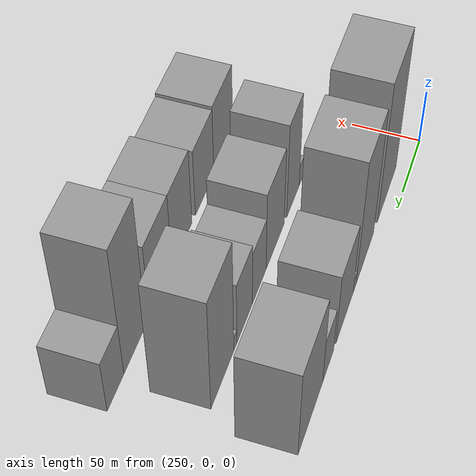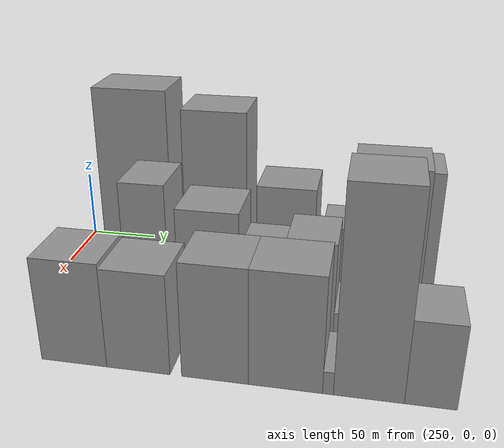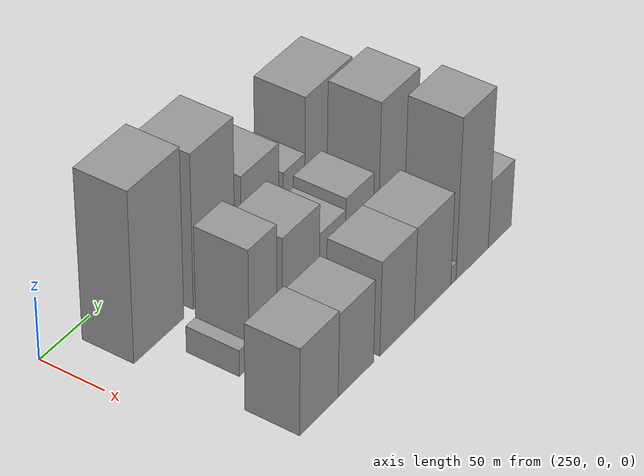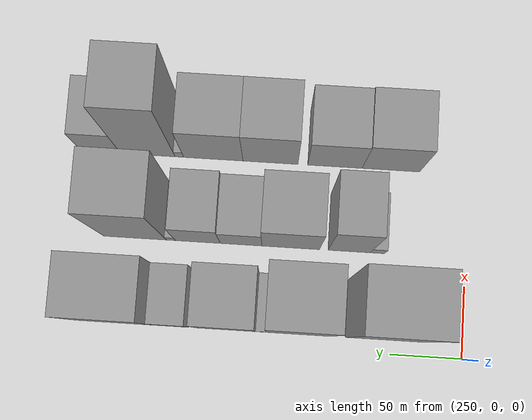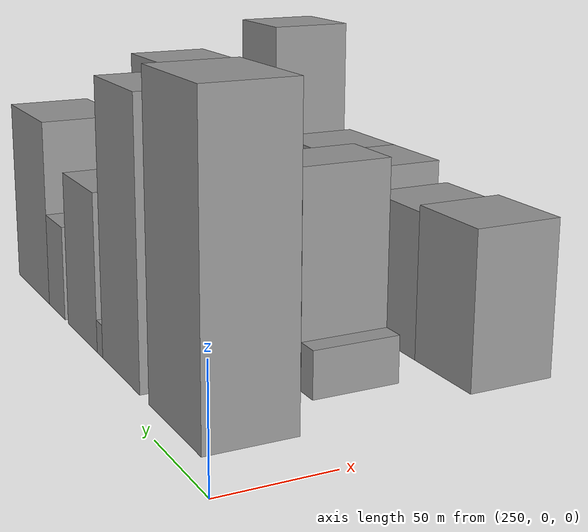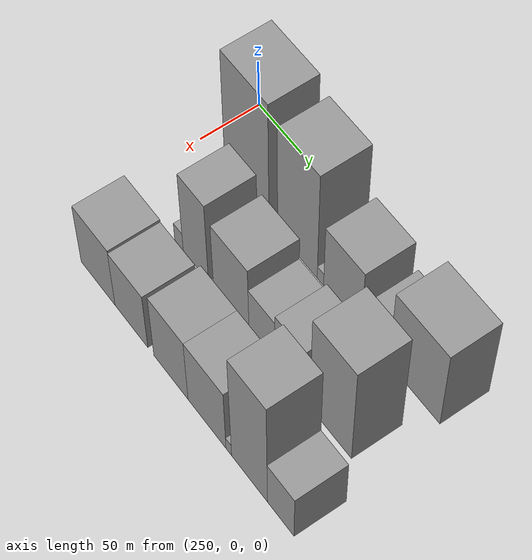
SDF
<sdf version="1.6">
 <world name="default">
  <model name="building_182">
   <static>1</static>
   <pose>280.0000 55.6610 0 0.000000 0.000000 0.000000</pose>
   <link name="link">
    <pose>0 0 67.50 0 0 0</pose>
    <collision name="collision"><geometry><box><size>40.0000 51.8874 135.0000</size></box></geometry></collision>
    <visual name="visual">
     <cast_shadows>0</cast_shadows>
     <geometry><box><size>40.0000 51.8874 135.0000</size></box></geometry>
     <material>
      <script>
       <uri>model://grey_wall/materials/scripts</uri>
       <uri>model://grey_wall/materials/textures</uri>
       <name>vrc/grey_wall</name>
      </script>
     </material>
    </visual>
   </link>
  </model>
  <model name="building_183">
   <static>1</static>
   <pose>280.0000 114.0816 0 0.000000 0.000000 0.000000</pose>
   <link name="link">
    <pose>0 0 61.50 0 0 0</pose>
    <collision name="collision"><geometry><box><size>40.0000 44.9537 123.0000</size></box></geometry></collision>
    <visual name="visual">
     <cast_shadows>0</cast_shadows>
     <geometry><box><size>40.0000 44.9537 123.0000</size></box></geometry>
     <material>
      <script>
       <uri>model://grey_wall/materials/scripts</uri>
       <uri>model://grey_wall/materials/textures</uri>
       <name>vrc/grey_wall</name>
      </script>
     </material>
    </visual>
   </link>
  </model>
  <model name="building_184">
   <static>1</static>
   <pose>280.0000 140.1601 0 0.000000 0.000000 0.000000</pose>
   <link name="link">
    <pose>0 0 7.50 0 0 0</pose>
    <collision name="collision"><geometry><box><size>40.0000 7.2034 15.0000</size></box></geometry></collision>
    <visual name="visual">
     <cast_shadows>0</cast_shadows>
     <geometry><box><size>40.0000 7.2034 15.0000</size></box></geometry>
     <material>
      <script>
       <uri>model://grey_wall/materials/scripts</uri>
       <uri>model://grey_wall/materials/textures</uri>
       <name>vrc/grey_wall</name>
      </script>
     </material>
    </visual>
   </link>
  </model>
  <model name="building_185">
   <static>1</static>
   <pose>280.0000 164.4192 0 0.000000 0.000000 0.000000</pose>
   <link name="link">
    <pose>0 0 36.00 0 0 0</pose>
    <collision name="collision"><geometry><box><size>40.0000 41.3148 72.0000</size></box></geometry></collision>
    <visual name="visual">
     <cast_shadows>0</cast_shadows>
     <geometry><box><size>40.0000 41.3148 72.0000</size></box></geometry>
     <material>
      <script>
       <uri>model://grey_wall/materials/scripts</uri>
       <uri>model://grey_wall/materials/textures</uri>
       <name>vrc/grey_wall</name>
      </script>
     </material>
    </visual>
   </link>
  </model>
  <model name="building_186">
   <static>1</static>
   <pose>280.0000 202.5063 0 0.000000 0.000000 0.000000</pose>
   <link name="link">
    <pose>0 0 22.50 0 0 0</pose>
    <collision name="collision"><geometry><box><size>40.0000 24.8593 45.0000</size></box></geometry></collision>
    <visual name="visual">
     <cast_shadows>0</cast_shadows>
     <geometry><box><size>40.0000 24.8593 45.0000</size></box></geometry>
     <material>
      <script>
       <uri>model://grey_wall/materials/scripts</uri>
       <uri>model://grey_wall/materials/textures</uri>
       <name>vrc/grey_wall</name>
      </script>
     </material>
    </visual>
   </link>
  </model>
  <model name="building_187">
   <static>1</static>
   <pose>280.0000 241.6313 0 0.000000 0.000000 0.000000</pose>
   <link name="link">
    <pose>0 0 45.00 0 0 0</pose>
    <collision name="collision"><geometry><box><size>40.0000 53.3908 90.0000</size></box></geometry></collision>
    <visual name="visual">
     <cast_shadows>0</cast_shadows>
     <geometry><box><size>40.0000 53.3908 90.0000</size></box></geometry>
     <material>
      <script>
       <uri>model://grey_wall/materials/scripts</uri>
       <uri>model://grey_wall/materials/textures</uri>
       <name>vrc/grey_wall</name>
      </script>
     </material>
    </visual>
   </link>
  </model>
  <model name="building_237">
   <static>1</static>
   <pose>340.0000 62.0020 0 0.000000 0.000000 0.000000</pose>
   <link name="link">
    <pose>0 0 10.50 0 0 0</pose>
    <collision name="collision"><geometry><box><size>40.0000 10.1527 21.0000</size></box></geometry></collision>
    <visual name="visual">
     <cast_shadows>0</cast_shadows>
     <geometry><box><size>40.0000 10.1527 21.0000</size></box></geometry>
     <material>
      <script>
       <uri>model://grey_wall/materials/scripts</uri>
       <uri>model://grey_wall/materials/textures</uri>
       <name>vrc/grey_wall</name>
      </script>
     </material>
    </visual>
   </link>
  </model>
  <model name="building_238">
   <static>1</static>
   <pose>340.0000 81.9165 0 0.000000 0.000000 0.000000</pose>
   <link name="link">
    <pose>0 0 46.50 0 0 0</pose>
    <collision name="collision"><geometry><box><size>40.0000 29.6761 93.0000</size></box></geometry></collision>
    <visual name="visual">
     <cast_shadows>0</cast_shadows>
     <geometry><box><size>40.0000 29.6761 93.0000</size></box></geometry>
     <material>
      <script>
       <uri>model://grey_wall/materials/scripts</uri>
       <uri>model://grey_wall/materials/textures</uri>
       <name>vrc/grey_wall</name>
      </script>
     </material>
    </visual>
   </link>
  </model>
  <model name="building_239">
   <static>1</static>
   <pose>340.0000 123.0331 0 0.000000 0.000000 0.000000</pose>
   <link name="link">
    <pose>0 0 39.00 0 0 0</pose>
    <collision name="collision"><geometry><box><size>40.0000 40.5572 78.0000</size></box></geometry></collision>
    <visual name="visual">
     <cast_shadows>0</cast_shadows>
     <geometry><box><size>40.0000 40.5572 78.0000</size></box></geometry>
     <material>
      <script>
       <uri>model://grey_wall/materials/scripts</uri>
       <uri>model://grey_wall/materials/textures</uri>
       <name>vrc/grey_wall</name>
      </script>
     </material>
    </visual>
   </link>
  </model>
  <model name="building_240">
   <static>1</static>
   <pose>340.0000 157.9282 0 0.000000 0.000000 0.000000</pose>
   <link name="link">
    <pose>0 0 27.00 0 0 0</pose>
    <collision name="collision"><geometry><box><size>40.0000 29.2330 54.0000</size></box></geometry></collision>
    <visual name="visual">
     <cast_shadows>0</cast_shadows>
     <geometry><box><size>40.0000 29.2330 54.0000</size></box></geometry>
     <material>
      <script>
       <uri>model://grey_wall/materials/scripts</uri>
       <uri>model://grey_wall/materials/textures</uri>
       <name>vrc/grey_wall</name>
      </script>
     </material>
    </visual>
   </link>
  </model>
  <model name="building_241">
   <static>1</static>
   <pose>340.0000 188.3856 0 0.000000 0.000000 0.000000</pose>
   <link name="link">
    <pose>0 0 31.50 0 0 0</pose>
    <collision name="collision"><geometry><box><size>40.0000 31.6819 63.0000</size></box></geometry></collision>
    <visual name="visual">
     <cast_shadows>0</cast_shadows>
     <geometry><box><size>40.0000 31.6819 63.0000</size></box></geometry>
     <material>
      <script>
       <uri>model://grey_wall/materials/scripts</uri>
       <uri>model://grey_wall/materials/textures</uri>
       <name>vrc/grey_wall</name>
      </script>
     </material>
    </visual>
   </link>
  </model>
  <model name="building_242">
   <static>1</static>
   <pose>340.0000 207.4656 0 0.000000 0.000000 0.000000</pose>
   <link name="link">
    <pose>0 0 7.50 0 0 0</pose>
    <collision name="collision"><geometry><box><size>40.0000 6.4781 15.0000</size></box></geometry></collision>
    <visual name="visual">
     <cast_shadows>0</cast_shadows>
     <geometry><box><size>40.0000 6.4781 15.0000</size></box></geometry>
     <material>
      <script>
       <uri>model://grey_wall/materials/scripts</uri>
       <uri>model://grey_wall/materials/textures</uri>
       <name>vrc/grey_wall</name>
      </script>
     </material>
    </visual>
   </link>
  </model>
  <model name="building_243">
   <static>1</static>
   <pose>340.0000 232.7843 0 0.000000 0.000000 0.000000</pose>
   <link name="link">
    <pose>0 0 57.00 0 0 0</pose>
    <collision name="collision"><geometry><box><size>40.0000 44.1592 114.0000</size></box></geometry></collision>
    <visual name="visual">
     <cast_shadows>0</cast_shadows>
     <geometry><box><size>40.0000 44.1592 114.0000</size></box></geometry>
     <material>
      <script>
       <uri>model://grey_wall/materials/scripts</uri>
       <uri>model://grey_wall/materials/textures</uri>
       <name>vrc/grey_wall</name>
      </script>
     </material>
    </visual>
   </link>
  </model>
  <model name="building_290">
   <static>1</static>
   <pose>400.0000 55.1021 0 0.000000 0.000000 0.000000</pose>
   <link name="link">
    <pose>0 0 34.50 0 0 0</pose>
    <collision name="collision"><geometry><box><size>40.0000 41.1230 69.0000</size></box></geometry></collision>
    <visual name="visual">
     <cast_shadows>0</cast_shadows>
     <geometry><box><size>40.0000 41.1230 69.0000</size></box></geometry>
     <material>
      <script>
       <uri>model://grey_wall/materials/scripts</uri>
       <uri>model://grey_wall/materials/textures</uri>
       <name>vrc/grey_wall</name>
      </script>
     </material>
    </visual>
   </link>
  </model>
  <model name="building_291">
   <static>1</static>
   <pose>400.0000 95.0707 0 0.000000 0.000000 0.000000</pose>
   <link name="link">
    <pose>0 0 33.00 0 0 0</pose>
    <collision name="collision"><geometry><box><size>40.0000 38.8143 66.0000</size></box></geometry></collision>
    <visual name="visual">
     <cast_shadows>0</cast_shadows>
     <geometry><box><size>40.0000 38.8143 66.0000</size></box></geometry>
     <material>
      <script>
       <uri>model://grey_wall/materials/scripts</uri>
       <uri>model://grey_wall/materials/textures</uri>
       <name>vrc/grey_wall</name>
      </script>
     </material>
    </visual>
   </link>
  </model>
  <model name="building_292">
   <static>1</static>
   <pose>400.0000 141.0817 0 0.000000 0.000000 0.000000</pose>
   <link name="link">
    <pose>0 0 37.50 0 0 0</pose>
    <collision name="collision"><geometry><box><size>40.0000 39.2076 75.0000</size></box></geometry></collision>
    <visual name="visual">
     <cast_shadows>0</cast_shadows>
     <geometry><box><size>40.0000 39.2076 75.0000</size></box></geometry>
     <material>
      <script>
       <uri>model://grey_wall/materials/scripts</uri>
       <uri>model://grey_wall/materials/textures</uri>
       <name>vrc/grey_wall</name>
      </script>
     </material>
    </visual>
   </link>
  </model>
  <model name="building_293">
   <static>1</static>
   <pose>400.0000 181.8902 0 0.000000 0.000000 0.000000</pose>
   <link name="link">
    <pose>0 0 37.50 0 0 0</pose>
    <collision name="collision"><geometry><box><size>40.0000 42.4094 75.0000</size></box></geometry></collision>
    <visual name="visual">
     <cast_shadows>0</cast_shadows>
     <geometry><box><size>40.0000 42.4094 75.0000</size></box></geometry>
     <material>
      <script>
       <uri>model://grey_wall/materials/scripts</uri>
       <uri>model://grey_wall/materials/textures</uri>
       <name>vrc/grey_wall</name>
      </script>
     </material>
    </visual>
   </link>
  </model>
  <model name="building_294">
   <static>1</static>
   <pose>400.0000 206.1501 0 0.000000 0.000000 0.000000</pose>
   <link name="link">
    <pose>0 0 7.50 0 0 0</pose>
    <collision name="collision"><geometry><box><size>40.0000 6.1104 15.0000</size></box></geometry></collision>
    <visual name="visual">
     <cast_shadows>0</cast_shadows>
     <geometry><box><size>40.0000 6.1104 15.0000</size></box></geometry>
     <material>
      <script>
       <uri>model://grey_wall/materials/scripts</uri>
       <uri>model://grey_wall/materials/textures</uri>
       <name>vrc/grey_wall</name>
      </script>
     </material>
    </visual>
   </link>
  </model>
  <model name="building_295">
   <static>1</static>
   <pose>400.0000 228.6457 0 0.000000 0.000000 0.000000</pose>
   <link name="link">
    <pose>0 0 64.50 0 0 0</pose>
    <collision name="collision"><geometry><box><size>40.0000 38.8808 129.0000</size></box></geometry></collision>
    <visual name="visual">
     <cast_shadows>0</cast_shadows>
     <geometry><box><size>40.0000 38.8808 129.0000</size></box></geometry>
     <material>
      <script>
       <uri>model://grey_wall/materials/scripts</uri>
       <uri>model://grey_wall/materials/textures</uri>
       <name>vrc/grey_wall</name>
      </script>
     </material>
    </visual>
   </link>
  </model>
  <model name="building_296">
   <static>1</static>
   <pose>400.0000 262.1777 0 0.000000 0.000000 0.000000</pose>
   <link name="link">
    <pose>0 0 27.00 0 0 0</pose>
    <collision name="collision"><geometry><box><size>40.0000 28.1831 54.0000</size></box></geometry></collision>
    <visual name="visual">
     <cast_shadows>0</cast_shadows>
     <geometry><box><size>40.0000 28.1831 54.0000</size></box></geometry>
     <material>
      <script>
       <uri>model://grey_wall/materials/scripts</uri>
       <uri>model://grey_wall/materials/textures</uri>
       <name>vrc/grey_wall</name>
      </script>
     </material>
    </visual>
   </link>
  </model>
 </world>
</sdf>
